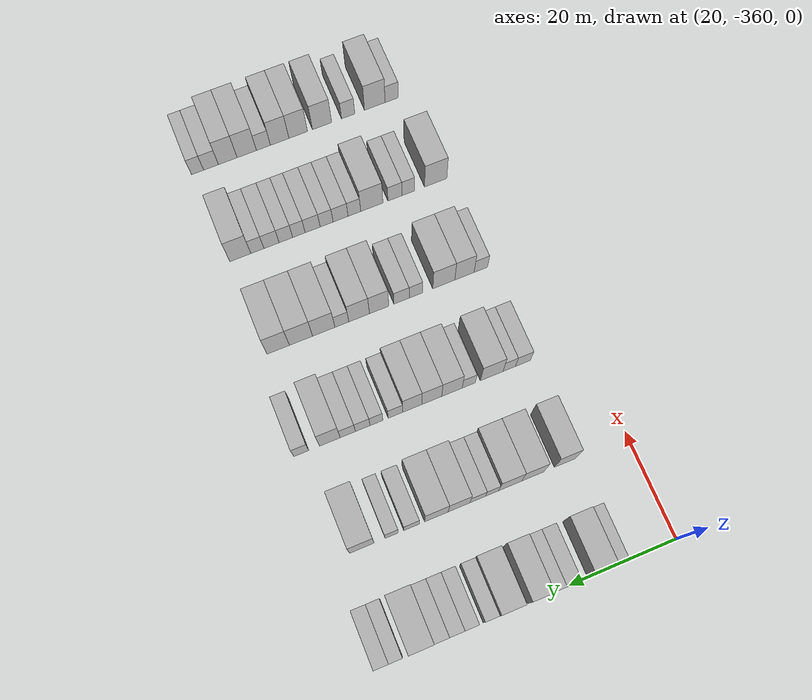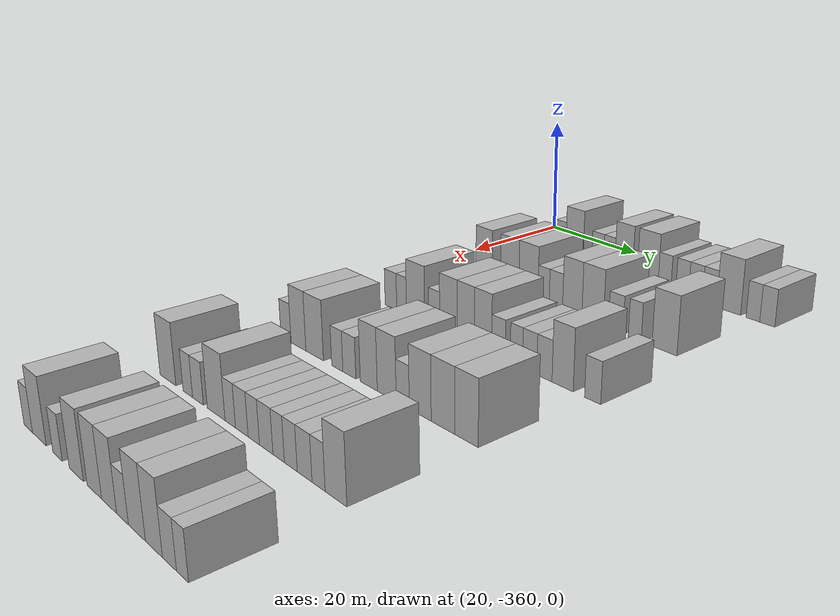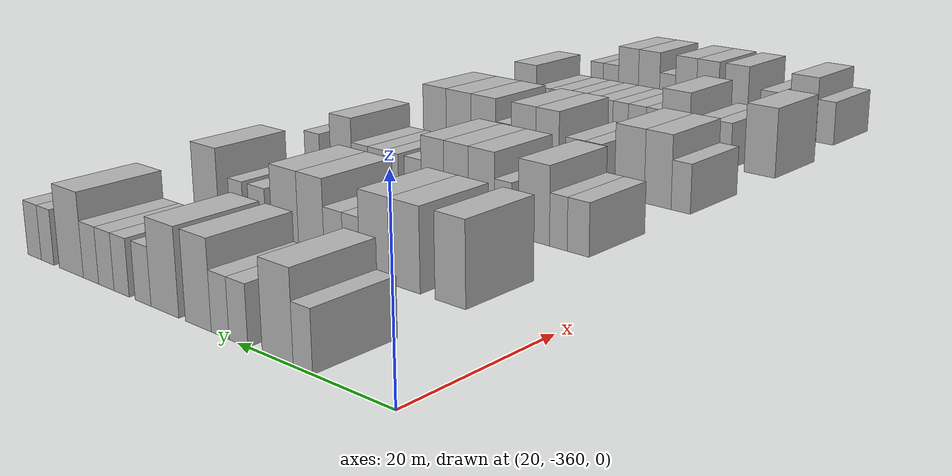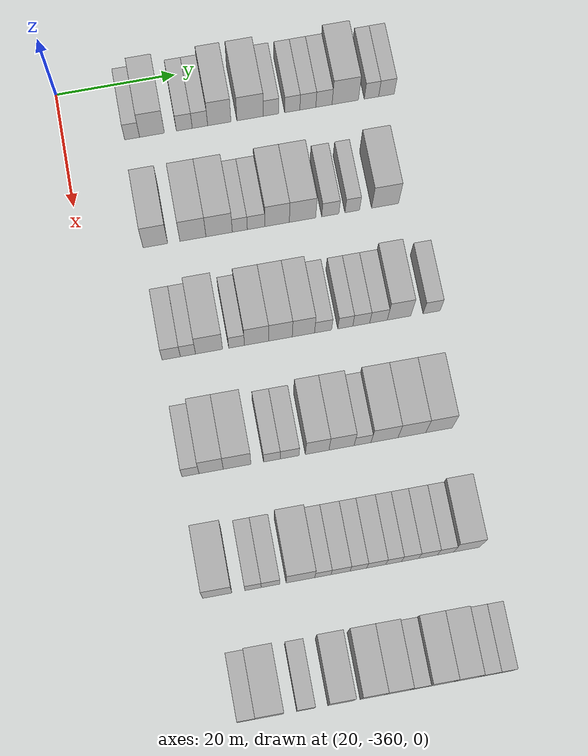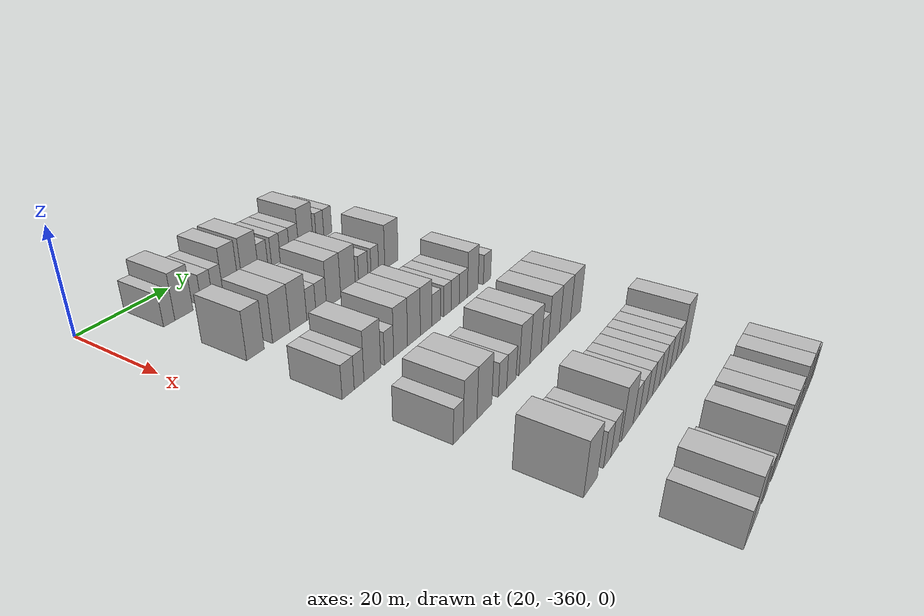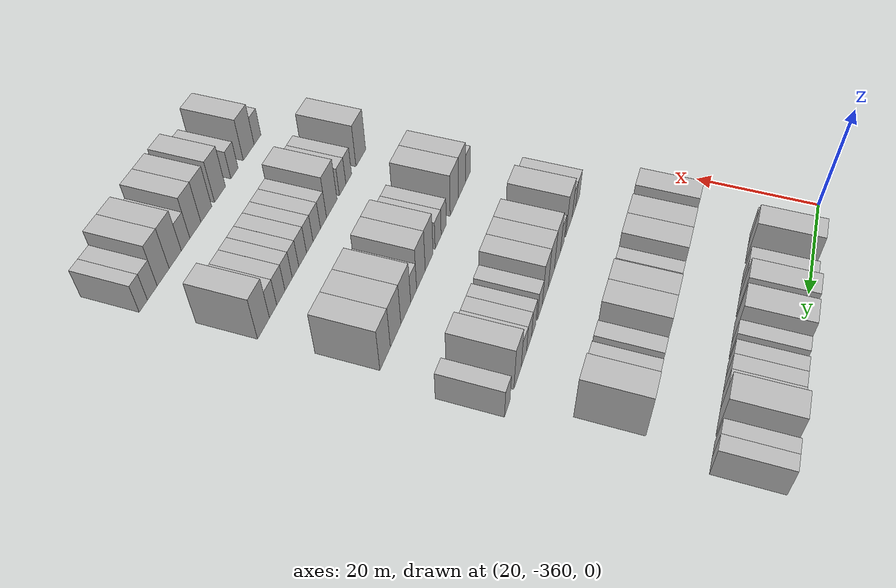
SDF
<sdf version="1.6">
 <world name="default">
  <model name="building_1">
   <static>1</static>
   <pose>25.0000 -348.7599 0 0.000000 0.000000 0.000000</pose>
   <link name="link">
    <pose>0 0 3.00 0 0 0</pose>
    <collision name="collision"><geometry><box><size>10.0000 2.4801 6.0000</size></box></geometry></collision>
    <visual name="visual">
     <cast_shadows>0</cast_shadows>
     <geometry><box><size>10.0000 2.4801 6.0000</size></box></geometry>
     <material>
      <script>
       <uri>model://HANNAS_wall/materials/scripts</uri>
       <uri>model://HANNAS_wall/materials/textures</uri>
       <name>vrc/HANNAS_wall</name>
      </script>
     </material>
    </visual>
   </link>
  </model>
  <model name="building_2">
   <static>1</static>
   <pose>25.0000 -345.4535 0 0.000000 0.000000 0.000000</pose>
   <link name="link">
    <pose>0 0 4.50 0 0 0</pose>
    <collision name="collision"><geometry><box><size>10.0000 4.1328 9.0000</size></box></geometry></collision>
    <visual name="visual">
     <cast_shadows>0</cast_shadows>
     <geometry><box><size>10.0000 4.1328 9.0000</size></box></geometry>
     <material>
      <script>
       <uri>model://HANNAS_wall/materials/scripts</uri>
       <uri>model://HANNAS_wall/materials/textures</uri>
       <name>vrc/HANNAS_wall</name>
      </script>
     </material>
    </visual>
   </link>
  </model>
  <model name="building_3">
   <static>1</static>
   <pose>25.0000 -340.0605 0 0.000000 0.000000 0.000000</pose>
   <link name="link">
    <pose>0 0 3.00 0 0 0</pose>
    <collision name="collision"><geometry><box><size>10.0000 2.6533 6.0000</size></box></geometry></collision>
    <visual name="visual">
     <cast_shadows>0</cast_shadows>
     <geometry><box><size>10.0000 2.6533 6.0000</size></box></geometry>
     <material>
      <script>
       <uri>model://HANNAS_wall/materials/scripts</uri>
       <uri>model://HANNAS_wall/materials/textures</uri>
       <name>vrc/HANNAS_wall</name>
      </script>
     </material>
    </visual>
   </link>
  </model>
  <model name="building_4">
   <static>1</static>
   <pose>25.0000 -337.4462 0 0.000000 0.000000 0.000000</pose>
   <link name="link">
    <pose>0 0 3.00 0 0 0</pose>
    <collision name="collision"><geometry><box><size>10.0000 2.5753 6.0000</size></box></geometry></collision>
    <visual name="visual">
     <cast_shadows>0</cast_shadows>
     <geometry><box><size>10.0000 2.5753 6.0000</size></box></geometry>
     <material>
      <script>
       <uri>model://HANNAS_wall/materials/scripts</uri>
       <uri>model://HANNAS_wall/materials/textures</uri>
       <name>vrc/HANNAS_wall</name>
      </script>
     </material>
    </visual>
   </link>
  </model>
  <model name="building_5">
   <static>1</static>
   <pose>25.0000 -334.2106 0 0.000000 0.000000 0.000000</pose>
   <link name="link">
    <pose>0 0 4.50 0 0 0</pose>
    <collision name="collision"><geometry><box><size>10.0000 3.8959 9.0000</size></box></geometry></collision>
    <visual name="visual">
     <cast_shadows>0</cast_shadows>
     <geometry><box><size>10.0000 3.8959 9.0000</size></box></geometry>
     <material>
      <script>
       <uri>model://HANNAS_wall/materials/scripts</uri>
       <uri>model://HANNAS_wall/materials/textures</uri>
       <name>vrc/HANNAS_wall</name>
      </script>
     </material>
    </visual>
   </link>
  </model>
  <model name="building_6">
   <static>1</static>
   <pose>25.0000 -329.0597 0 0.000000 0.000000 0.000000</pose>
   <link name="link">
    <pose>0 0 4.50 0 0 0</pose>
    <collision name="collision"><geometry><box><size>10.0000 4.4059 9.0000</size></box></geometry></collision>
    <visual name="visual">
     <cast_shadows>0</cast_shadows>
     <geometry><box><size>10.0000 4.4059 9.0000</size></box></geometry>
     <material>
      <script>
       <uri>model://HANNAS_wall/materials/scripts</uri>
       <uri>model://HANNAS_wall/materials/textures</uri>
       <name>vrc/HANNAS_wall</name>
      </script>
     </material>
    </visual>
   </link>
  </model>
  <model name="building_7">
   <static>1</static>
   <pose>25.0000 -325.5510 0 0.000000 0.000000 0.000000</pose>
   <link name="link">
    <pose>0 0 3.00 0 0 0</pose>
    <collision name="collision"><geometry><box><size>10.0000 2.6116 6.0000</size></box></geometry></collision>
    <visual name="visual">
     <cast_shadows>0</cast_shadows>
     <geometry><box><size>10.0000 2.6116 6.0000</size></box></geometry>
     <material>
      <script>
       <uri>model://HANNAS_wall/materials/scripts</uri>
       <uri>model://HANNAS_wall/materials/textures</uri>
       <name>vrc/HANNAS_wall</name>
      </script>
     </material>
    </visual>
   </link>
  </model>
  <model name="building_8">
   <static>1</static>
   <pose>25.0000 -321.9728 0 0.000000 0.000000 0.000000</pose>
   <link name="link">
    <pose>0 0 3.00 0 0 0</pose>
    <collision name="collision"><geometry><box><size>10.0000 2.5449 6.0000</size></box></geometry></collision>
    <visual name="visual">
     <cast_shadows>0</cast_shadows>
     <geometry><box><size>10.0000 2.5449 6.0000</size></box></geometry>
     <material>
      <script>
       <uri>model://HANNAS_wall/materials/scripts</uri>
       <uri>model://HANNAS_wall/materials/textures</uri>
       <name>vrc/HANNAS_wall</name>
      </script>
     </material>
    </visual>
   </link>
  </model>
  <model name="building_9">
   <static>1</static>
   <pose>25.0000 -319.3544 0 0.000000 0.000000 0.000000</pose>
   <link name="link">
    <pose>0 0 3.00 0 0 0</pose>
    <collision name="collision"><geometry><box><size>10.0000 2.6918 6.0000</size></box></geometry></collision>
    <visual name="visual">
     <cast_shadows>0</cast_shadows>
     <geometry><box><size>10.0000 2.6918 6.0000</size></box></geometry>
     <material>
      <script>
       <uri>model://HANNAS_wall/materials/scripts</uri>
       <uri>model://HANNAS_wall/materials/textures</uri>
       <name>vrc/HANNAS_wall</name>
      </script>
     </material>
    </visual>
   </link>
  </model>
  <model name="building_10">
   <static>1</static>
   <pose>25.0000 -316.6475 0 0.000000 0.000000 0.000000</pose>
   <link name="link">
    <pose>0 0 3.00 0 0 0</pose>
    <collision name="collision"><geometry><box><size>10.0000 2.7220 6.0000</size></box></geometry></collision>
    <visual name="visual">
     <cast_shadows>0</cast_shadows>
     <geometry><box><size>10.0000 2.7220 6.0000</size></box></geometry>
     <material>
      <script>
       <uri>model://HANNAS_wall/materials/scripts</uri>
       <uri>model://HANNAS_wall/materials/textures</uri>
       <name>vrc/HANNAS_wall</name>
      </script>
     </material>
    </visual>
   </link>
  </model>
  <model name="building_11">
   <static>1</static>
   <pose>25.0000 -313.0614 0 0.000000 0.000000 0.000000</pose>
   <link name="link">
    <pose>0 0 4.50 0 0 0</pose>
    <collision name="collision"><geometry><box><size>10.0000 4.4501 9.0000</size></box></geometry></collision>
    <visual name="visual">
     <cast_shadows>0</cast_shadows>
     <geometry><box><size>10.0000 4.4501 9.0000</size></box></geometry>
     <material>
      <script>
       <uri>model://HANNAS_wall/materials/scripts</uri>
       <uri>model://HANNAS_wall/materials/textures</uri>
       <name>vrc/HANNAS_wall</name>
      </script>
     </material>
    </visual>
   </link>
  </model>
  <model name="building_12">
   <static>1</static>
   <pose>25.0000 -308.6230 0 0.000000 0.000000 0.000000</pose>
   <link name="link">
    <pose>0 0 3.00 0 0 0</pose>
    <collision name="collision"><geometry><box><size>10.0000 2.4266 6.0000</size></box></geometry></collision>
    <visual name="visual">
     <cast_shadows>0</cast_shadows>
     <geometry><box><size>10.0000 2.4266 6.0000</size></box></geometry>
     <material>
      <script>
       <uri>model://HANNAS_wall/materials/scripts</uri>
       <uri>model://HANNAS_wall/materials/textures</uri>
       <name>vrc/HANNAS_wall</name>
      </script>
     </material>
    </visual>
   </link>
  </model>
  <model name="building_13">
   <static>1</static>
   <pose>25.0000 -306.0931 0 0.000000 0.000000 0.000000</pose>
   <link name="link">
    <pose>0 0 3.00 0 0 0</pose>
    <collision name="collision"><geometry><box><size>10.0000 2.6333 6.0000</size></box></geometry></collision>
    <visual name="visual">
     <cast_shadows>0</cast_shadows>
     <geometry><box><size>10.0000 2.6333 6.0000</size></box></geometry>
     <material>
      <script>
       <uri>model://HANNAS_wall/materials/scripts</uri>
       <uri>model://HANNAS_wall/materials/textures</uri>
       <name>vrc/HANNAS_wall</name>
      </script>
     </material>
    </visual>
   </link>
  </model>
  <model name="building_175">
   <static>1</static>
   <pose>44.0000 -347.9869 0 0.000000 0.000000 0.000000</pose>
   <link name="link">
    <pose>0 0 4.50 0 0 0</pose>
    <collision name="collision"><geometry><box><size>10.0000 4.0261 9.0000</size></box></geometry></collision>
    <visual name="visual">
     <cast_shadows>0</cast_shadows>
     <geometry><box><size>10.0000 4.0261 9.0000</size></box></geometry>
     <material>
      <script>
       <uri>model://HANNAS_wall/materials/scripts</uri>
       <uri>model://HANNAS_wall/materials/textures</uri>
       <name>vrc/HANNAS_wall</name>
      </script>
     </material>
    </visual>
   </link>
  </model>
  <model name="building_176">
   <static>1</static>
   <pose>44.0000 -341.8412 0 0.000000 0.000000 0.000000</pose>
   <link name="link">
    <pose>0 0 4.50 0 0 0</pose>
    <collision name="collision"><geometry><box><size>10.0000 4.2652 9.0000</size></box></geometry></collision>
    <visual name="visual">
     <cast_shadows>0</cast_shadows>
     <geometry><box><size>10.0000 4.2652 9.0000</size></box></geometry>
     <material>
      <script>
       <uri>model://HANNAS_wall/materials/scripts</uri>
       <uri>model://HANNAS_wall/materials/textures</uri>
       <name>vrc/HANNAS_wall</name>
      </script>
     </material>
    </visual>
   </link>
  </model>
  <model name="building_177">
   <static>1</static>
   <pose>44.0000 -337.5461 0 0.000000 0.000000 0.000000</pose>
   <link name="link">
    <pose>0 0 4.50 0 0 0</pose>
    <collision name="collision"><geometry><box><size>10.0000 4.3251 9.0000</size></box></geometry></collision>
    <visual name="visual">
     <cast_shadows>0</cast_shadows>
     <geometry><box><size>10.0000 4.3251 9.0000</size></box></geometry>
     <material>
      <script>
       <uri>model://HANNAS_wall/materials/scripts</uri>
       <uri>model://HANNAS_wall/materials/textures</uri>
       <name>vrc/HANNAS_wall</name>
      </script>
     </material>
    </visual>
   </link>
  </model>
  <model name="building_178">
   <static>1</static>
   <pose>44.0000 -334.1520 0 0.000000 0.000000 0.000000</pose>
   <link name="link">
    <pose>0 0 3.00 0 0 0</pose>
    <collision name="collision"><geometry><box><size>10.0000 2.4630 6.0000</size></box></geometry></collision>
    <visual name="visual">
     <cast_shadows>0</cast_shadows>
     <geometry><box><size>10.0000 2.4630 6.0000</size></box></geometry>
     <material>
      <script>
       <uri>model://HANNAS_wall/materials/scripts</uri>
       <uri>model://HANNAS_wall/materials/textures</uri>
       <name>vrc/HANNAS_wall</name>
      </script>
     </material>
    </visual>
   </link>
  </model>
  <model name="building_179">
   <static>1</static>
   <pose>44.0000 -331.4786 0 0.000000 0.000000 0.000000</pose>
   <link name="link">
    <pose>0 0 3.00 0 0 0</pose>
    <collision name="collision"><geometry><box><size>10.0000 2.8839 6.0000</size></box></geometry></collision>
    <visual name="visual">
     <cast_shadows>0</cast_shadows>
     <geometry><box><size>10.0000 2.8839 6.0000</size></box></geometry>
     <material>
      <script>
       <uri>model://HANNAS_wall/materials/scripts</uri>
       <uri>model://HANNAS_wall/materials/textures</uri>
       <name>vrc/HANNAS_wall</name>
      </script>
     </material>
    </visual>
   </link>
  </model>
  <model name="building_180">
   <static>1</static>
   <pose>44.0000 -328.0221 0 0.000000 0.000000 0.000000</pose>
   <link name="link">
    <pose>0 0 4.50 0 0 0</pose>
    <collision name="collision"><geometry><box><size>10.0000 4.0290 9.0000</size></box></geometry></collision>
    <visual name="visual">
     <cast_shadows>0</cast_shadows>
     <geometry><box><size>10.0000 4.0290 9.0000</size></box></geometry>
     <material>
      <script>
       <uri>model://HANNAS_wall/materials/scripts</uri>
       <uri>model://HANNAS_wall/materials/textures</uri>
       <name>vrc/HANNAS_wall</name>
      </script>
     </material>
    </visual>
   </link>
  </model>
  <model name="building_181">
   <static>1</static>
   <pose>44.0000 -323.8381 0 0.000000 0.000000 0.000000</pose>
   <link name="link">
    <pose>0 0 4.50 0 0 0</pose>
    <collision name="collision"><geometry><box><size>10.0000 4.3389 9.0000</size></box></geometry></collision>
    <visual name="visual">
     <cast_shadows>0</cast_shadows>
     <geometry><box><size>10.0000 4.3389 9.0000</size></box></geometry>
     <material>
      <script>
       <uri>model://HANNAS_wall/materials/scripts</uri>
       <uri>model://HANNAS_wall/materials/textures</uri>
       <name>vrc/HANNAS_wall</name>
      </script>
     </material>
    </visual>
   </link>
  </model>
  <model name="building_182">
   <static>1</static>
   <pose>44.0000 -319.2491 0 0.000000 0.000000 0.000000</pose>
   <link name="link">
    <pose>0 0 3.00 0 0 0</pose>
    <collision name="collision"><geometry><box><size>10.0000 2.8390 6.0000</size></box></geometry></collision>
    <visual name="visual">
     <cast_shadows>0</cast_shadows>
     <geometry><box><size>10.0000 2.8390 6.0000</size></box></geometry>
     <material>
      <script>
       <uri>model://HANNAS_wall/materials/scripts</uri>
       <uri>model://HANNAS_wall/materials/textures</uri>
       <name>vrc/HANNAS_wall</name>
      </script>
     </material>
    </visual>
   </link>
  </model>
  <model name="building_183">
   <static>1</static>
   <pose>44.0000 -315.6232 0 0.000000 0.000000 0.000000</pose>
   <link name="link">
    <pose>0 0 3.00 0 0 0</pose>
    <collision name="collision"><geometry><box><size>10.0000 2.4129 6.0000</size></box></geometry></collision>
    <visual name="visual">
     <cast_shadows>0</cast_shadows>
     <geometry><box><size>10.0000 2.4129 6.0000</size></box></geometry>
     <material>
      <script>
       <uri>model://HANNAS_wall/materials/scripts</uri>
       <uri>model://HANNAS_wall/materials/textures</uri>
       <name>vrc/HANNAS_wall</name>
      </script>
     </material>
    </visual>
   </link>
  </model>
  <model name="building_184">
   <static>1</static>
   <pose>44.0000 -310.1896 0 0.000000 0.000000 0.000000</pose>
   <link name="link">
    <pose>0 0 4.50 0 0 0</pose>
    <collision name="collision"><geometry><box><size>10.0000 4.4543 9.0000</size></box></geometry></collision>
    <visual name="visual">
     <cast_shadows>0</cast_shadows>
     <geometry><box><size>10.0000 4.4543 9.0000</size></box></geometry>
     <material>
      <script>
       <uri>model://HANNAS_wall/materials/scripts</uri>
       <uri>model://HANNAS_wall/materials/textures</uri>
       <name>vrc/HANNAS_wall</name>
      </script>
     </material>
    </visual>
   </link>
  </model>
  <model name="building_345">
   <static>1</static>
   <pose>63.0000 -348.5397 0 0.000000 0.000000 0.000000</pose>
   <link name="link">
    <pose>0 0 3.00 0 0 0</pose>
    <collision name="collision"><geometry><box><size>10.0000 2.9206 6.0000</size></box></geometry></collision>
    <visual name="visual">
     <cast_shadows>0</cast_shadows>
     <geometry><box><size>10.0000 2.9206 6.0000</size></box></geometry>
     <material>
      <script>
       <uri>model://HANNAS_wall/materials/scripts</uri>
       <uri>model://HANNAS_wall/materials/textures</uri>
       <name>vrc/HANNAS_wall</name>
      </script>
     </material>
    </visual>
   </link>
  </model>
  <model name="building_346">
   <static>1</static>
   <pose>63.0000 -345.8643 0 0.000000 0.000000 0.000000</pose>
   <link name="link">
    <pose>0 0 3.00 0 0 0</pose>
    <collision name="collision"><geometry><box><size>10.0000 2.4301 6.0000</size></box></geometry></collision>
    <visual name="visual">
     <cast_shadows>0</cast_shadows>
     <geometry><box><size>10.0000 2.4301 6.0000</size></box></geometry>
     <material>
      <script>
       <uri>model://HANNAS_wall/materials/scripts</uri>
       <uri>model://HANNAS_wall/materials/textures</uri>
       <name>vrc/HANNAS_wall</name>
      </script>
     </material>
    </visual>
   </link>
  </model>
  <model name="building_347">
   <static>1</static>
   <pose>63.0000 -342.4774 0 0.000000 0.000000 0.000000</pose>
   <link name="link">
    <pose>0 0 4.50 0 0 0</pose>
    <collision name="collision"><geometry><box><size>10.0000 4.3438 9.0000</size></box></geometry></collision>
    <visual name="visual">
     <cast_shadows>0</cast_shadows>
     <geometry><box><size>10.0000 4.3438 9.0000</size></box></geometry>
     <material>
      <script>
       <uri>model://HANNAS_wall/materials/scripts</uri>
       <uri>model://HANNAS_wall/materials/textures</uri>
       <name>vrc/HANNAS_wall</name>
      </script>
     </material>
    </visual>
   </link>
  </model>
  <model name="building_348">
   <static>1</static>
   <pose>63.0000 -338.0428 0 0.000000 0.000000 0.000000</pose>
   <link name="link">
    <pose>0 0 3.00 0 0 0</pose>
    <collision name="collision"><geometry><box><size>10.0000 2.5254 6.0000</size></box></geometry></collision>
    <visual name="visual">
     <cast_shadows>0</cast_shadows>
     <geometry><box><size>10.0000 2.5254 6.0000</size></box></geometry>
     <material>
      <script>
       <uri>model://HANNAS_wall/materials/scripts</uri>
       <uri>model://HANNAS_wall/materials/textures</uri>
       <name>vrc/HANNAS_wall</name>
      </script>
     </material>
    </visual>
   </link>
  </model>
  <model name="building_349">
   <static>1</static>
   <pose>63.0000 -334.8219 0 0.000000 0.000000 0.000000</pose>
   <link name="link">
    <pose>0 0 4.50 0 0 0</pose>
    <collision name="collision"><geometry><box><size>10.0000 3.9163 9.0000</size></box></geometry></collision>
    <visual name="visual">
     <cast_shadows>0</cast_shadows>
     <geometry><box><size>10.0000 3.9163 9.0000</size></box></geometry>
     <material>
      <script>
       <uri>model://HANNAS_wall/materials/scripts</uri>
       <uri>model://HANNAS_wall/materials/textures</uri>
       <name>vrc/HANNAS_wall</name>
      </script>
     </material>
    </visual>
   </link>
  </model>
  <model name="building_350">
   <static>1</static>
   <pose>63.0000 -330.9716 0 0.000000 0.000000 0.000000</pose>
   <link name="link">
    <pose>0 0 4.50 0 0 0</pose>
    <collision name="collision"><geometry><box><size>10.0000 3.7843 9.0000</size></box></geometry></collision>
    <visual name="visual">
     <cast_shadows>0</cast_shadows>
     <geometry><box><size>10.0000 3.7843 9.0000</size></box></geometry>
     <material>
      <script>
       <uri>model://HANNAS_wall/materials/scripts</uri>
       <uri>model://HANNAS_wall/materials/textures</uri>
       <name>vrc/HANNAS_wall</name>
      </script>
     </material>
    </visual>
   </link>
  </model>
  <model name="building_351">
   <static>1</static>
   <pose>63.0000 -327.2791 0 0.000000 0.000000 0.000000</pose>
   <link name="link">
    <pose>0 0 4.50 0 0 0</pose>
    <collision name="collision"><geometry><box><size>10.0000 3.6008 9.0000</size></box></geometry></collision>
    <visual name="visual">
     <cast_shadows>0</cast_shadows>
     <geometry><box><size>10.0000 3.6008 9.0000</size></box></geometry>
     <material>
      <script>
       <uri>model://HANNAS_wall/materials/scripts</uri>
       <uri>model://HANNAS_wall/materials/textures</uri>
       <name>vrc/HANNAS_wall</name>
      </script>
     </material>
    </visual>
   </link>
  </model>
  <model name="building_352">
   <static>1</static>
   <pose>63.0000 -324.0963 0 0.000000 0.000000 0.000000</pose>
   <link name="link">
    <pose>0 0 3.00 0 0 0</pose>
    <collision name="collision"><geometry><box><size>10.0000 2.7648 6.0000</size></box></geometry></collision>
    <visual name="visual">
     <cast_shadows>0</cast_shadows>
     <geometry><box><size>10.0000 2.7648 6.0000</size></box></geometry>
     <material>
      <script>
       <uri>model://HANNAS_wall/materials/scripts</uri>
       <uri>model://HANNAS_wall/materials/textures</uri>
       <name>vrc/HANNAS_wall</name>
      </script>
     </material>
    </visual>
   </link>
  </model>
  <model name="building_353">
   <static>1</static>
   <pose>63.0000 -320.5025 0 0.000000 0.000000 0.000000</pose>
   <link name="link">
    <pose>0 0 3.00 0 0 0</pose>
    <collision name="collision"><geometry><box><size>10.0000 2.4227 6.0000</size></box></geometry></collision>
    <visual name="visual">
     <cast_shadows>0</cast_shadows>
     <geometry><box><size>10.0000 2.4227 6.0000</size></box></geometry>
     <material>
      <script>
       <uri>model://HANNAS_wall/materials/scripts</uri>
       <uri>model://HANNAS_wall/materials/textures</uri>
       <name>vrc/HANNAS_wall</name>
      </script>
     </material>
    </visual>
   </link>
  </model>
  <model name="building_354">
   <static>1</static>
   <pose>63.0000 -317.9150 0 0.000000 0.000000 0.000000</pose>
   <link name="link">
    <pose>0 0 3.00 0 0 0</pose>
    <collision name="collision"><geometry><box><size>10.0000 2.7523 6.0000</size></box></geometry></collision>
    <visual name="visual">
     <cast_shadows>0</cast_shadows>
     <geometry><box><size>10.0000 2.7523 6.0000</size></box></geometry>
     <material>
      <script>
       <uri>model://HANNAS_wall/materials/scripts</uri>
       <uri>model://HANNAS_wall/materials/textures</uri>
       <name>vrc/HANNAS_wall</name>
      </script>
     </material>
    </visual>
   </link>
  </model>
  <model name="building_355">
   <static>1</static>
   <pose>63.0000 -315.1168 0 0.000000 0.000000 0.000000</pose>
   <link name="link">
    <pose>0 0 3.00 0 0 0</pose>
    <collision name="collision"><geometry><box><size>10.0000 2.8442 6.0000</size></box></geometry></collision>
    <visual name="visual">
     <cast_shadows>0</cast_shadows>
     <geometry><box><size>10.0000 2.8442 6.0000</size></box></geometry>
     <material>
      <script>
       <uri>model://HANNAS_wall/materials/scripts</uri>
       <uri>model://HANNAS_wall/materials/textures</uri>
       <name>vrc/HANNAS_wall</name>
      </script>
     </material>
    </visual>
   </link>
  </model>
  <model name="building_356">
   <static>1</static>
   <pose>63.0000 -311.7737 0 0.000000 0.000000 0.000000</pose>
   <link name="link">
    <pose>0 0 4.50 0 0 0</pose>
    <collision name="collision"><geometry><box><size>10.0000 3.8419 9.0000</size></box></geometry></collision>
    <visual name="visual">
     <cast_shadows>0</cast_shadows>
     <geometry><box><size>10.0000 3.8419 9.0000</size></box></geometry>
     <material>
      <script>
       <uri>model://HANNAS_wall/materials/scripts</uri>
       <uri>model://HANNAS_wall/materials/textures</uri>
       <name>vrc/HANNAS_wall</name>
      </script>
     </material>
    </visual>
   </link>
  </model>
  <model name="building_357">
   <static>1</static>
   <pose>63.0000 -306.4634 0 0.000000 0.000000 0.000000</pose>
   <link name="link">
    <pose>0 0 3.00 0 0 0</pose>
    <collision name="collision"><geometry><box><size>10.0000 2.7786 6.0000</size></box></geometry></collision>
    <visual name="visual">
     <cast_shadows>0</cast_shadows>
     <geometry><box><size>10.0000 2.7786 6.0000</size></box></geometry>
     <material>
      <script>
       <uri>model://HANNAS_wall/materials/scripts</uri>
       <uri>model://HANNAS_wall/materials/textures</uri>
       <name>vrc/HANNAS_wall</name>
      </script>
     </material>
    </visual>
   </link>
  </model>
  <model name="building_528">
   <static>1</static>
   <pose>82.0000 -348.6622 0 0.000000 0.000000 0.000000</pose>
   <link name="link">
    <pose>0 0 3.00 0 0 0</pose>
    <collision name="collision"><geometry><box><size>10.0000 2.6757 6.0000</size></box></geometry></collision>
    <visual name="visual">
     <cast_shadows>0</cast_shadows>
     <geometry><box><size>10.0000 2.6757 6.0000</size></box></geometry>
     <material>
      <script>
       <uri>model://HANNAS_wall/materials/scripts</uri>
       <uri>model://HANNAS_wall/materials/textures</uri>
       <name>vrc/HANNAS_wall</name>
      </script>
     </material>
    </visual>
   </link>
  </model>
  <model name="building_529">
   <static>1</static>
   <pose>82.0000 -345.4168 0 0.000000 0.000000 0.000000</pose>
   <link name="link">
    <pose>0 0 4.50 0 0 0</pose>
    <collision name="collision"><geometry><box><size>10.0000 3.8150 9.0000</size></box></geometry></collision>
    <visual name="visual">
     <cast_shadows>0</cast_shadows>
     <geometry><box><size>10.0000 3.8150 9.0000</size></box></geometry>
     <material>
      <script>
       <uri>model://HANNAS_wall/materials/scripts</uri>
       <uri>model://HANNAS_wall/materials/textures</uri>
       <name>vrc/HANNAS_wall</name>
      </script>
     </material>
    </visual>
   </link>
  </model>
  <model name="building_530">
   <static>1</static>
   <pose>82.0000 -341.3368 0 0.000000 0.000000 0.000000</pose>
   <link name="link">
    <pose>0 0 4.50 0 0 0</pose>
    <collision name="collision"><geometry><box><size>10.0000 4.3450 9.0000</size></box></geometry></collision>
    <visual name="visual">
     <cast_shadows>0</cast_shadows>
     <geometry><box><size>10.0000 4.3450 9.0000</size></box></geometry>
     <material>
      <script>
       <uri>model://HANNAS_wall/materials/scripts</uri>
       <uri>model://HANNAS_wall/materials/textures</uri>
       <name>vrc/HANNAS_wall</name>
      </script>
     </material>
    </visual>
   </link>
  </model>
  <model name="building_531">
   <static>1</static>
   <pose>82.0000 -335.8570 0 0.000000 0.000000 0.000000</pose>
   <link name="link">
    <pose>0 0 3.00 0 0 0</pose>
    <collision name="collision"><geometry><box><size>10.0000 2.6146 6.0000</size></box></geometry></collision>
    <visual name="visual">
     <cast_shadows>0</cast_shadows>
     <geometry><box><size>10.0000 2.6146 6.0000</size></box></geometry>
     <material>
      <script>
       <uri>model://HANNAS_wall/materials/scripts</uri>
       <uri>model://HANNAS_wall/materials/textures</uri>
       <name>vrc/HANNAS_wall</name>
      </script>
     </material>
    </visual>
   </link>
  </model>
  <model name="building_532">
   <static>1</static>
   <pose>82.0000 -333.0563 0 0.000000 0.000000 0.000000</pose>
   <link name="link">
    <pose>0 0 3.00 0 0 0</pose>
    <collision name="collision"><geometry><box><size>10.0000 2.9867 6.0000</size></box></geometry></collision>
    <visual name="visual">
     <cast_shadows>0</cast_shadows>
     <geometry><box><size>10.0000 2.9867 6.0000</size></box></geometry>
     <material>
      <script>
       <uri>model://HANNAS_wall/materials/scripts</uri>
       <uri>model://HANNAS_wall/materials/textures</uri>
       <name>vrc/HANNAS_wall</name>
      </script>
     </material>
    </visual>
   </link>
  </model>
  <model name="building_533">
   <static>1</static>
   <pose>82.0000 -328.6925 0 0.000000 0.000000 0.000000</pose>
   <link name="link">
    <pose>0 0 4.50 0 0 0</pose>
    <collision name="collision"><geometry><box><size>10.0000 3.7408 9.0000</size></box></geometry></collision>
    <visual name="visual">
     <cast_shadows>0</cast_shadows>
     <geometry><box><size>10.0000 3.7408 9.0000</size></box></geometry>
     <material>
      <script>
       <uri>model://HANNAS_wall/materials/scripts</uri>
       <uri>model://HANNAS_wall/materials/textures</uri>
       <name>vrc/HANNAS_wall</name>
      </script>
     </material>
    </visual>
   </link>
  </model>
  <model name="building_534">
   <static>1</static>
   <pose>82.0000 -324.8238 0 0.000000 0.000000 0.000000</pose>
   <link name="link">
    <pose>0 0 4.50 0 0 0</pose>
    <collision name="collision"><geometry><box><size>10.0000 3.9967 9.0000</size></box></geometry></collision>
    <visual name="visual">
     <cast_shadows>0</cast_shadows>
     <geometry><box><size>10.0000 3.9967 9.0000</size></box></geometry>
     <material>
      <script>
       <uri>model://HANNAS_wall/materials/scripts</uri>
       <uri>model://HANNAS_wall/materials/textures</uri>
       <name>vrc/HANNAS_wall</name>
      </script>
     </material>
    </visual>
   </link>
  </model>
  <model name="building_535">
   <static>1</static>
   <pose>82.0000 -321.4832 0 0.000000 0.000000 0.000000</pose>
   <link name="link">
    <pose>0 0 3.00 0 0 0</pose>
    <collision name="collision"><geometry><box><size>10.0000 2.6844 6.0000</size></box></geometry></collision>
    <visual name="visual">
     <cast_shadows>0</cast_shadows>
     <geometry><box><size>10.0000 2.6844 6.0000</size></box></geometry>
     <material>
      <script>
       <uri>model://HANNAS_wall/materials/scripts</uri>
       <uri>model://HANNAS_wall/materials/textures</uri>
       <name>vrc/HANNAS_wall</name>
      </script>
     </material>
    </visual>
   </link>
  </model>
  <model name="building_536">
   <static>1</static>
   <pose>82.0000 -317.9907 0 0.000000 0.000000 0.000000</pose>
   <link name="link">
    <pose>0 0 4.50 0 0 0</pose>
    <collision name="collision"><geometry><box><size>10.0000 4.3008 9.0000</size></box></geometry></collision>
    <visual name="visual">
     <cast_shadows>0</cast_shadows>
     <geometry><box><size>10.0000 4.3008 9.0000</size></box></geometry>
     <material>
      <script>
       <uri>model://HANNAS_wall/materials/scripts</uri>
       <uri>model://HANNAS_wall/materials/textures</uri>
       <name>vrc/HANNAS_wall</name>
      </script>
     </material>
    </visual>
   </link>
  </model>
  <model name="building_537">
   <static>1</static>
   <pose>82.0000 -313.6325 0 0.000000 0.000000 0.000000</pose>
   <link name="link">
    <pose>0 0 4.50 0 0 0</pose>
    <collision name="collision"><geometry><box><size>10.0000 4.4157 9.0000</size></box></geometry></collision>
    <visual name="visual">
     <cast_shadows>0</cast_shadows>
     <geometry><box><size>10.0000 4.4157 9.0000</size></box></geometry>
     <material>
      <script>
       <uri>model://HANNAS_wall/materials/scripts</uri>
       <uri>model://HANNAS_wall/materials/textures</uri>
       <name>vrc/HANNAS_wall</name>
      </script>
     </material>
    </visual>
   </link>
  </model>
  <model name="building_538">
   <static>1</static>
   <pose>82.0000 -309.3017 0 0.000000 0.000000 0.000000</pose>
   <link name="link">
    <pose>0 0 4.50 0 0 0</pose>
    <collision name="collision"><geometry><box><size>10.0000 4.2458 9.0000</size></box></geometry></collision>
    <visual name="visual">
     <cast_shadows>0</cast_shadows>
     <geometry><box><size>10.0000 4.2458 9.0000</size></box></geometry>
     <material>
      <script>
       <uri>model://HANNAS_wall/materials/scripts</uri>
       <uri>model://HANNAS_wall/materials/textures</uri>
       <name>vrc/HANNAS_wall</name>
      </script>
     </material>
    </visual>
   </link>
  </model>
  <model name="building_699">
   <static>1</static>
   <pose>101.0000 -347.7545 0 0.000000 0.000000 0.000000</pose>
   <link name="link">
    <pose>0 0 4.50 0 0 0</pose>
    <collision name="collision"><geometry><box><size>10.0000 4.4910 9.0000</size></box></geometry></collision>
    <visual name="visual">
     <cast_shadows>0</cast_shadows>
     <geometry><box><size>10.0000 4.4910 9.0000</size></box></geometry>
     <material>
      <script>
       <uri>model://HANNAS_wall/materials/scripts</uri>
       <uri>model://HANNAS_wall/materials/textures</uri>
       <name>vrc/HANNAS_wall</name>
      </script>
     </material>
    </visual>
   </link>
  </model>
  <model name="building_700">
   <static>1</static>
   <pose>101.0000 -342.2399 0 0.000000 0.000000 0.000000</pose>
   <link name="link">
    <pose>0 0 3.00 0 0 0</pose>
    <collision name="collision"><geometry><box><size>10.0000 2.5383 6.0000</size></box></geometry></collision>
    <visual name="visual">
     <cast_shadows>0</cast_shadows>
     <geometry><box><size>10.0000 2.5383 6.0000</size></box></geometry>
     <material>
      <script>
       <uri>model://HANNAS_wall/materials/scripts</uri>
       <uri>model://HANNAS_wall/materials/textures</uri>
       <name>vrc/HANNAS_wall</name>
      </script>
     </material>
    </visual>
   </link>
  </model>
  <model name="building_701">
   <static>1</static>
   <pose>101.0000 -339.5527 0 0.000000 0.000000 0.000000</pose>
   <link name="link">
    <pose>0 0 3.00 0 0 0</pose>
    <collision name="collision"><geometry><box><size>10.0000 2.8360 6.0000</size></box></geometry></collision>
    <visual name="visual">
     <cast_shadows>0</cast_shadows>
     <geometry><box><size>10.0000 2.8360 6.0000</size></box></geometry>
     <material>
      <script>
       <uri>model://HANNAS_wall/materials/scripts</uri>
       <uri>model://HANNAS_wall/materials/textures</uri>
       <name>vrc/HANNAS_wall</name>
      </script>
     </material>
    </visual>
   </link>
  </model>
  <model name="building_702">
   <static>1</static>
   <pose>101.0000 -334.9207 0 0.000000 0.000000 0.000000</pose>
   <link name="link">
    <pose>0 0 4.50 0 0 0</pose>
    <collision name="collision"><geometry><box><size>10.0000 4.4280 9.0000</size></box></geometry></collision>
    <visual name="visual">
     <cast_shadows>0</cast_shadows>
     <geometry><box><size>10.0000 4.4280 9.0000</size></box></geometry>
     <material>
      <script>
       <uri>model://HANNAS_wall/materials/scripts</uri>
       <uri>model://HANNAS_wall/materials/textures</uri>
       <name>vrc/HANNAS_wall</name>
      </script>
     </material>
    </visual>
   </link>
  </model>
  <model name="building_703">
   <static>1</static>
   <pose>101.0000 -331.4485 0 0.000000 0.000000 0.000000</pose>
   <link name="link">
    <pose>0 0 3.00 0 0 0</pose>
    <collision name="collision"><geometry><box><size>10.0000 2.5164 6.0000</size></box></geometry></collision>
    <visual name="visual">
     <cast_shadows>0</cast_shadows>
     <geometry><box><size>10.0000 2.5164 6.0000</size></box></geometry>
     <material>
      <script>
       <uri>model://HANNAS_wall/materials/scripts</uri>
       <uri>model://HANNAS_wall/materials/textures</uri>
       <name>vrc/HANNAS_wall</name>
      </script>
     </material>
    </visual>
   </link>
  </model>
  <model name="building_704">
   <static>1</static>
   <pose>101.0000 -328.7040 0 0.000000 0.000000 0.000000</pose>
   <link name="link">
    <pose>0 0 3.00 0 0 0</pose>
    <collision name="collision"><geometry><box><size>10.0000 2.9725 6.0000</size></box></geometry></collision>
    <visual name="visual">
     <cast_shadows>0</cast_shadows>
     <geometry><box><size>10.0000 2.9725 6.0000</size></box></geometry>
     <material>
      <script>
       <uri>model://HANNAS_wall/materials/scripts</uri>
       <uri>model://HANNAS_wall/materials/textures</uri>
       <name>vrc/HANNAS_wall</name>
      </script>
     </material>
    </visual>
   </link>
  </model>
  <model name="building_705">
   <static>1</static>
   <pose>101.0000 -325.9369 0 0.000000 0.000000 0.000000</pose>
   <link name="link">
    <pose>0 0 3.00 0 0 0</pose>
    <collision name="collision"><geometry><box><size>10.0000 2.5619 6.0000</size></box></geometry></collision>
    <visual name="visual">
     <cast_shadows>0</cast_shadows>
     <geometry><box><size>10.0000 2.5619 6.0000</size></box></geometry>
     <material>
      <script>
       <uri>model://HANNAS_wall/materials/scripts</uri>
       <uri>model://HANNAS_wall/materials/textures</uri>
       <name>vrc/HANNAS_wall</name>
      </script>
     </material>
    </visual>
   </link>
  </model>
  <model name="building_706">
   <static>1</static>
   <pose>101.0000 -323.1708 0 0.000000 0.000000 0.000000</pose>
   <link name="link">
    <pose>0 0 3.00 0 0 0</pose>
    <collision name="collision"><geometry><box><size>10.0000 2.9703 6.0000</size></box></geometry></collision>
    <visual name="visual">
     <cast_shadows>0</cast_shadows>
     <geometry><box><size>10.0000 2.9703 6.0000</size></box></geometry>
     <material>
      <script>
       <uri>model://HANNAS_wall/materials/scripts</uri>
       <uri>model://HANNAS_wall/materials/textures</uri>
       <name>vrc/HANNAS_wall</name>
      </script>
     </material>
    </visual>
   </link>
  </model>
  <model name="building_707">
   <static>1</static>
   <pose>101.0000 -320.4592 0 0.000000 0.000000 0.000000</pose>
   <link name="link">
    <pose>0 0 3.00 0 0 0</pose>
    <collision name="collision"><geometry><box><size>10.0000 2.4527 6.0000</size></box></geometry></collision>
    <visual name="visual">
     <cast_shadows>0</cast_shadows>
     <geometry><box><size>10.0000 2.4527 6.0000</size></box></geometry>
     <material>
      <script>
       <uri>model://HANNAS_wall/materials/scripts</uri>
       <uri>model://HANNAS_wall/materials/textures</uri>
       <name>vrc/HANNAS_wall</name>
      </script>
     </material>
    </visual>
   </link>
  </model>
  <model name="building_708">
   <static>1</static>
   <pose>101.0000 -317.9016 0 0.000000 0.000000 0.000000</pose>
   <link name="link">
    <pose>0 0 3.00 0 0 0</pose>
    <collision name="collision"><geometry><box><size>10.0000 2.6626 6.0000</size></box></geometry></collision>
    <visual name="visual">
     <cast_shadows>0</cast_shadows>
     <geometry><box><size>10.0000 2.6626 6.0000</size></box></geometry>
     <material>
      <script>
       <uri>model://HANNAS_wall/materials/scripts</uri>
       <uri>model://HANNAS_wall/materials/textures</uri>
       <name>vrc/HANNAS_wall</name>
      </script>
     </material>
    </visual>
   </link>
  </model>
  <model name="building_709">
   <static>1</static>
   <pose>101.0000 -315.0906 0 0.000000 0.000000 0.000000</pose>
   <link name="link">
    <pose>0 0 3.00 0 0 0</pose>
    <collision name="collision"><geometry><box><size>10.0000 2.9593 6.0000</size></box></geometry></collision>
    <visual name="visual">
     <cast_shadows>0</cast_shadows>
     <geometry><box><size>10.0000 2.9593 6.0000</size></box></geometry>
     <material>
      <script>
       <uri>model://HANNAS_wall/materials/scripts</uri>
       <uri>model://HANNAS_wall/materials/textures</uri>
       <name>vrc/HANNAS_wall</name>
      </script>
     </material>
    </visual>
   </link>
  </model>
  <model name="building_710">
   <static>1</static>
   <pose>101.0000 -312.3349 0 0.000000 0.000000 0.000000</pose>
   <link name="link">
    <pose>0 0 3.00 0 0 0</pose>
    <collision name="collision"><geometry><box><size>10.0000 2.5522 6.0000</size></box></geometry></collision>
    <visual name="visual">
     <cast_shadows>0</cast_shadows>
     <geometry><box><size>10.0000 2.5522 6.0000</size></box></geometry>
     <material>
      <script>
       <uri>model://HANNAS_wall/materials/scripts</uri>
       <uri>model://HANNAS_wall/materials/textures</uri>
       <name>vrc/HANNAS_wall</name>
      </script>
     </material>
    </visual>
   </link>
  </model>
  <model name="building_711">
   <static>1</static>
   <pose>101.0000 -309.0224 0 0.000000 0.000000 0.000000</pose>
   <link name="link">
    <pose>0 0 4.50 0 0 0</pose>
    <collision name="collision"><geometry><box><size>10.0000 4.0727 9.0000</size></box></geometry></collision>
    <visual name="visual">
     <cast_shadows>0</cast_shadows>
     <geometry><box><size>10.0000 4.0727 9.0000</size></box></geometry>
     <material>
      <script>
       <uri>model://HANNAS_wall/materials/scripts</uri>
       <uri>model://HANNAS_wall/materials/textures</uri>
       <name>vrc/HANNAS_wall</name>
      </script>
     </material>
    </visual>
   </link>
  </model>
  <model name="building_882">
   <static>1</static>
   <pose>120.0000 -346.6498 0 0.000000 0.000000 0.000000</pose>
   <link name="link">
    <pose>0 0 3.00 0 0 0</pose>
    <collision name="collision"><geometry><box><size>10.0000 2.7004 6.0000</size></box></geometry></collision>
    <visual name="visual">
     <cast_shadows>0</cast_shadows>
     <geometry><box><size>10.0000 2.7004 6.0000</size></box></geometry>
     <material>
      <script>
       <uri>model://HANNAS_wall/materials/scripts</uri>
       <uri>model://HANNAS_wall/materials/textures</uri>
       <name>vrc/HANNAS_wall</name>
      </script>
     </material>
    </visual>
   </link>
  </model>
  <model name="building_883">
   <static>1</static>
   <pose>120.0000 -343.1794 0 0.000000 0.000000 0.000000</pose>
   <link name="link">
    <pose>0 0 4.50 0 0 0</pose>
    <collision name="collision"><geometry><box><size>10.0000 4.2404 9.0000</size></box></geometry></collision>
    <visual name="visual">
     <cast_shadows>0</cast_shadows>
     <geometry><box><size>10.0000 4.2404 9.0000</size></box></geometry>
     <material>
      <script>
       <uri>model://HANNAS_wall/materials/scripts</uri>
       <uri>model://HANNAS_wall/materials/textures</uri>
       <name>vrc/HANNAS_wall</name>
      </script>
     </material>
    </visual>
   </link>
  </model>
  <model name="building_884">
   <static>1</static>
   <pose>120.0000 -337.6988 0 0.000000 0.000000 0.000000</pose>
   <link name="link">
    <pose>0 0 3.00 0 0 0</pose>
    <collision name="collision"><geometry><box><size>10.0000 2.7208 6.0000</size></box></geometry></collision>
    <visual name="visual">
     <cast_shadows>0</cast_shadows>
     <geometry><box><size>10.0000 2.7208 6.0000</size></box></geometry>
     <material>
      <script>
       <uri>model://HANNAS_wall/materials/scripts</uri>
       <uri>model://HANNAS_wall/materials/textures</uri>
       <name>vrc/HANNAS_wall</name>
      </script>
     </material>
    </visual>
   </link>
  </model>
  <model name="building_885">
   <static>1</static>
   <pose>120.0000 -332.3844 0 0.000000 0.000000 0.000000</pose>
   <link name="link">
    <pose>0 0 4.50 0 0 0</pose>
    <collision name="collision"><geometry><box><size>10.0000 3.9080 9.0000</size></box></geometry></collision>
    <visual name="visual">
     <cast_shadows>0</cast_shadows>
     <geometry><box><size>10.0000 3.9080 9.0000</size></box></geometry>
     <material>
      <script>
       <uri>model://HANNAS_wall/materials/scripts</uri>
       <uri>model://HANNAS_wall/materials/textures</uri>
       <name>vrc/HANNAS_wall</name>
      </script>
     </material>
    </visual>
   </link>
  </model>
  <model name="building_886">
   <static>1</static>
   <pose>120.0000 -327.5469 0 0.000000 0.000000 0.000000</pose>
   <link name="link">
    <pose>0 0 4.50 0 0 0</pose>
    <collision name="collision"><geometry><box><size>10.0000 3.7671 9.0000</size></box></geometry></collision>
    <visual name="visual">
     <cast_shadows>0</cast_shadows>
     <geometry><box><size>10.0000 3.7671 9.0000</size></box></geometry>
     <material>
      <script>
       <uri>model://HANNAS_wall/materials/scripts</uri>
       <uri>model://HANNAS_wall/materials/textures</uri>
       <name>vrc/HANNAS_wall</name>
      </script>
     </material>
    </visual>
   </link>
  </model>
  <model name="building_887">
   <static>1</static>
   <pose>120.0000 -323.8026 0 0.000000 0.000000 0.000000</pose>
   <link name="link">
    <pose>0 0 4.50 0 0 0</pose>
    <collision name="collision"><geometry><box><size>10.0000 3.7214 9.0000</size></box></geometry></collision>
    <visual name="visual">
     <cast_shadows>0</cast_shadows>
     <geometry><box><size>10.0000 3.7214 9.0000</size></box></geometry>
     <material>
      <script>
       <uri>model://HANNAS_wall/materials/scripts</uri>
       <uri>model://HANNAS_wall/materials/textures</uri>
       <name>vrc/HANNAS_wall</name>
      </script>
     </material>
    </visual>
   </link>
  </model>
  <model name="building_888">
   <static>1</static>
   <pose>120.0000 -320.5390 0 0.000000 0.000000 0.000000</pose>
   <link name="link">
    <pose>0 0 3.00 0 0 0</pose>
    <collision name="collision"><geometry><box><size>10.0000 2.8057 6.0000</size></box></geometry></collision>
    <visual name="visual">
     <cast_shadows>0</cast_shadows>
     <geometry><box><size>10.0000 2.8057 6.0000</size></box></geometry>
     <material>
      <script>
       <uri>model://HANNAS_wall/materials/scripts</uri>
       <uri>model://HANNAS_wall/materials/textures</uri>
       <name>vrc/HANNAS_wall</name>
      </script>
     </material>
    </visual>
   </link>
  </model>
  <model name="building_889">
   <static>1</static>
   <pose>120.0000 -317.1978 0 0.000000 0.000000 0.000000</pose>
   <link name="link">
    <pose>0 0 4.50 0 0 0</pose>
    <collision name="collision"><geometry><box><size>10.0000 3.8768 9.0000</size></box></geometry></collision>
    <visual name="visual">
     <cast_shadows>0</cast_shadows>
     <geometry><box><size>10.0000 3.8768 9.0000</size></box></geometry>
     <material>
      <script>
       <uri>model://HANNAS_wall/materials/scripts</uri>
       <uri>model://HANNAS_wall/materials/textures</uri>
       <name>vrc/HANNAS_wall</name>
      </script>
     </material>
    </visual>
   </link>
  </model>
  <model name="building_890">
   <static>1</static>
   <pose>120.0000 -313.4008 0 0.000000 0.000000 0.000000</pose>
   <link name="link">
    <pose>0 0 4.50 0 0 0</pose>
    <collision name="collision"><geometry><box><size>10.0000 3.7172 9.0000</size></box></geometry></collision>
    <visual name="visual">
     <cast_shadows>0</cast_shadows>
     <geometry><box><size>10.0000 3.7172 9.0000</size></box></geometry>
     <material>
      <script>
       <uri>model://HANNAS_wall/materials/scripts</uri>
       <uri>model://HANNAS_wall/materials/textures</uri>
       <name>vrc/HANNAS_wall</name>
      </script>
     </material>
    </visual>
   </link>
  </model>
  <model name="building_891">
   <static>1</static>
   <pose>120.0000 -310.0790 0 0.000000 0.000000 0.000000</pose>
   <link name="link">
    <pose>0 0 3.00 0 0 0</pose>
    <collision name="collision"><geometry><box><size>10.0000 2.9264 6.0000</size></box></geometry></collision>
    <visual name="visual">
     <cast_shadows>0</cast_shadows>
     <geometry><box><size>10.0000 2.9264 6.0000</size></box></geometry>
     <material>
      <script>
       <uri>model://HANNAS_wall/materials/scripts</uri>
       <uri>model://HANNAS_wall/materials/textures</uri>
       <name>vrc/HANNAS_wall</name>
      </script>
     </material>
    </visual>
   </link>
  </model>
  <model name="building_892">
   <static>1</static>
   <pose>120.0000 -307.4045 0 0.000000 0.000000 0.000000</pose>
   <link name="link">
    <pose>0 0 3.00 0 0 0</pose>
    <collision name="collision"><geometry><box><size>10.0000 2.4226 6.0000</size></box></geometry></collision>
    <visual name="visual">
     <cast_shadows>0</cast_shadows>
     <geometry><box><size>10.0000 2.4226 6.0000</size></box></geometry>
     <material>
      <script>
       <uri>model://HANNAS_wall/materials/scripts</uri>
       <uri>model://HANNAS_wall/materials/textures</uri>
       <name>vrc/HANNAS_wall</name>
      </script>
     </material>
    </visual>
   </link>
  </model>
 </world>
</sdf>
